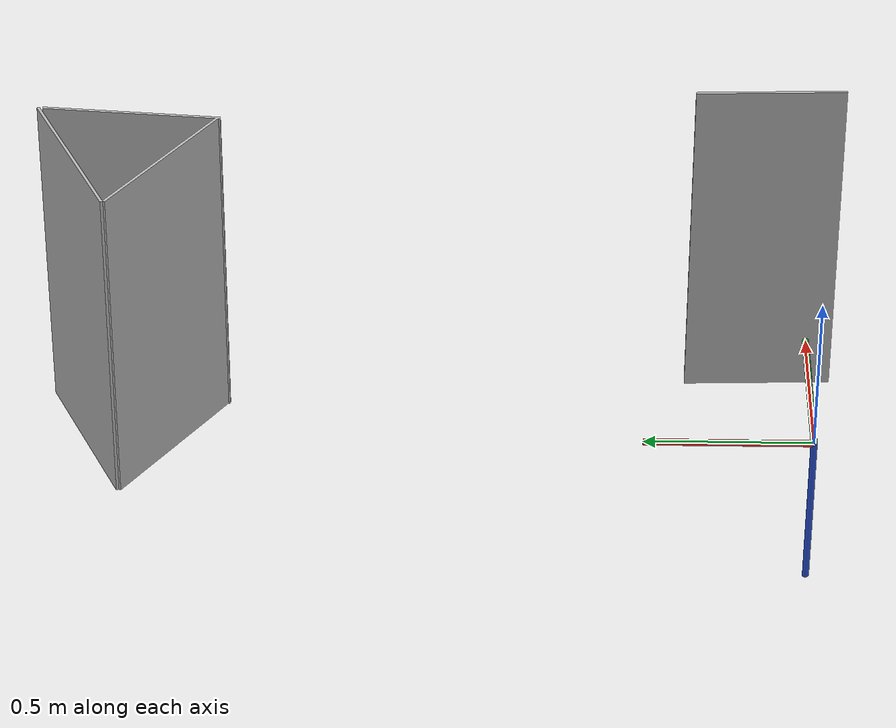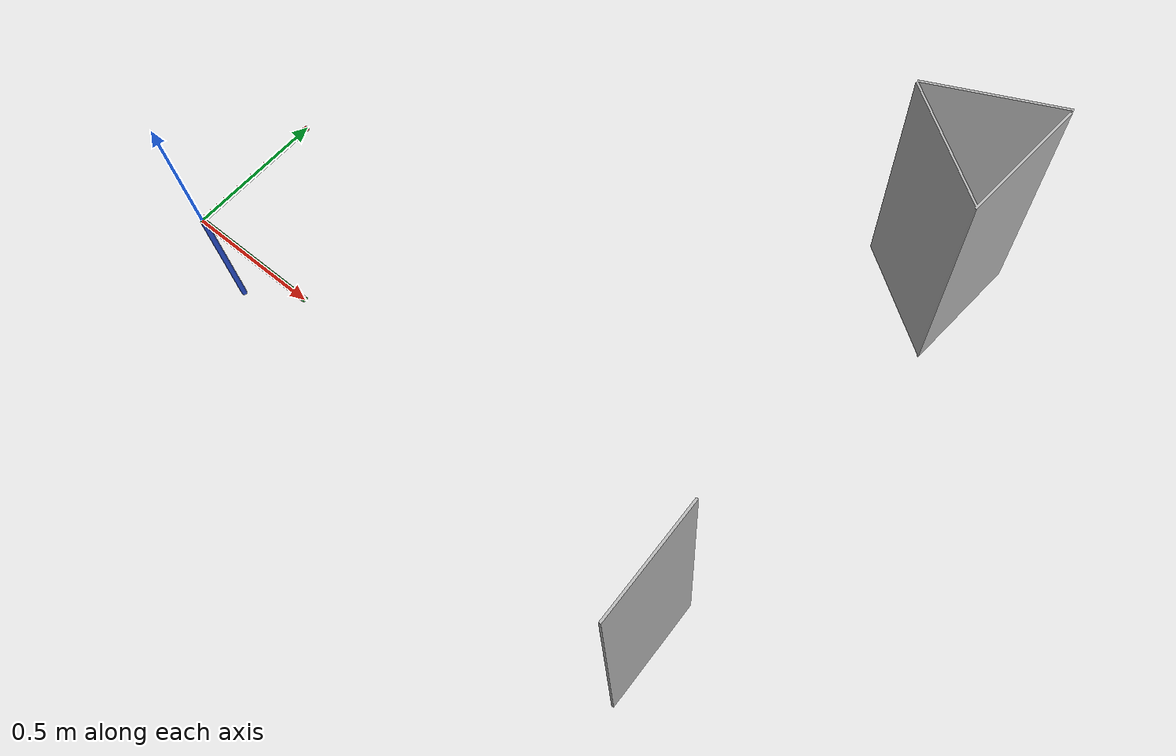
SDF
<sdf version="1.6">
 <world name="lake">
  <physics name="default_physics" default="1" type="ode">
   <max_step_size>0.002</max_step_size>
   <real_time_factor>1</real_time_factor>
   <real_time_update_rate>500</real_time_update_rate>
   <ode>
    <solver>
     <type>quick</type>
     <iters>50</iters>
     <sor>0.5</sor>
     <use_dynamic_moi_rescaling>0</use_dynamic_moi_rescaling>
    </solver>
    <constraints>
     <cfm>0</cfm>
     <erp>0.2</erp>
     <contact_max_correcting_vel>100</contact_max_correcting_vel>
     <contact_surface_layer>0.001</contact_surface_layer>
    </constraints>
   </ode>
  </physics>
  <scene>
   <ambient>0.01 0.01 0.01 1</ambient>
   <sky><clouds><speed>12</speed></clouds></sky>
   <shadows>1</shadows>
   <background>0.7 0.7 0.7 1</background>
  </scene>
  <spherical_coordinates>
   <latitude_deg>47.6279</latitude_deg>
   <longitude_deg>9.33455</longitude_deg>
   <surface_model>EARTH_WGS84</surface_model>
   <elevation>0</elevation>
   <heading_deg>0</heading_deg>
  </spherical_coordinates>
  <light name="sun1" type="directional">
   <pose>50 0 150 0 -0 0</pose>
   <diffuse>1 1 1 1</diffuse>
   <specular>0.1 0.1 0.1 1</specular>
   <direction>0.3 0.3 -1</direction>
  </light>
  <light name="sun" type="directional">
   <pose>0 0 10 0 -0 0</pose>
   <diffuse>0.8 0.8 0.8 1</diffuse>
   <specular>0.2 0.2 0.2 1</specular>
   <attenuation>
    <range>1000</range>
    <constant>0.9</constant>
    <linear>0.01</linear>
    <quadratic>0.001</quadratic>
   </attenuation>
   <direction>-0.5 0.1 -0.9</direction>
  </light>
  <model name="world_ned">
   <static>1</static>
   <link name="world_ned">
    <gravity>0</gravity>
    <pose>0 0 0 -3.14159 -0 1.5708</pose>
    <visual name="N_visual">
     <pose>0.25 0 0 1.5708 -0 1.5708</pose>
     <geometry><cylinder><radius>0.01</radius><length>0.5</length></cylinder></geometry>
     <material>
      <script><uri>file://media/materials/scripts/gazebo.material</uri><name>Gazebo/Red</name></script>
     </material>
    </visual>
    <visual name="E_visual">
     <pose>0 0.25 0 1.5708 -0 0</pose>
     <geometry><cylinder><radius>0.01</radius><length>0.5</length></cylinder></geometry>
     <material>
      <script><uri>file://media/materials/scripts/gazebo.material</uri><name>Gazebo/Green</name></script>
     </material>
    </visual>
    <visual name="D_visual">
     <pose>0 0 0.25 0 -0 0</pose>
     <geometry><cylinder><radius>0.01</radius><length>0.5</length></cylinder></geometry>
     <material>
      <script><uri>file://media/materials/scripts/gazebo.material</uri><name>Gazebo/Blue</name></script>
     </material>
    </visual>
   </link>
  </model>
  <plugin name="underwater_current_plugin" filename="libuuv_underwater_current_ros_plugin.so">
   <namespace>hydrodynamics</namespace>
   <constant_current>
    <topic>current_velocity</topic>
    <velocity><mean>0</mean><min>0</min><max>5</max><mu>0.0</mu><noiseAmp>0.0</noiseAmp></velocity>
    <horizontal_angle>
     <mean>0</mean>
     <min>-3.141592653589793238</min>
     <max>3.141592653589793238</max>
     <mu>0.0</mu>
     <noiseAmp>0.0</noiseAmp>
    </horizontal_angle>
    <vertical_angle>
     <mean>0</mean>
     <min>-3.141592653589793238</min>
     <max>3.141592653589793238</max>
     <mu>0.0</mu>
     <noiseAmp>0.0</noiseAmp>
    </vertical_angle>
   </constant_current>
  </plugin>
  <plugin name="sc_interface" filename="libuuv_sc_ros_interface_plugin.so"/>
  <gravity>0 0 -9.8</gravity>
  <magnetic_field>6e-06 2.3e-05 -4.2e-05</magnetic_field>
  <atmosphere type="adiabatic"/>
  <model name="cutie">
   <static>1</static>
   <link name="link">
    <must_be_base_link>1</must_be_base_link>
    <collision name="collision">
     <geometry><mesh><uri>model://cutie/meshes/cutie.dae</uri></mesh></geometry>
    </collision>
    <visual name="visual">
     <cast_shadows>0</cast_shadows>
     <geometry><mesh><uri>model://cutie/meshes/cutie.dae</uri></mesh></geometry>
    </visual>
   </link>
   <pose>1.94744 0.032804 -0.663487 0 0 -1.53723</pose>
  </model>
  <model name="buoy">
   <static>1</static>
   <link name="link">
    <must_be_base_link>1</must_be_base_link>
    <collision name="collision">
     <geometry><mesh><uri>model://buoy/meshes/buoy.dae</uri></mesh></geometry>
    </collision>
    <visual name="visual">
     <cast_shadows>0</cast_shadows>
     <geometry><mesh><uri>model://buoy/meshes/buoy.dae</uri></mesh></geometry>
    </visual>
   </link>
   <pose>2.03149 2.15982 -0.826071 0 -0 1.48658</pose>
  </model>
 </world>
</sdf>
